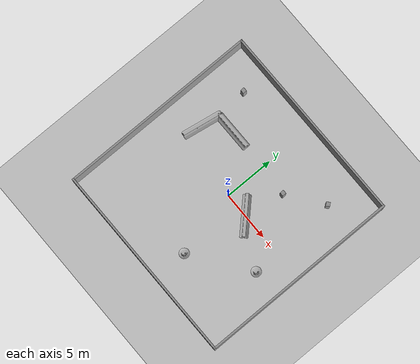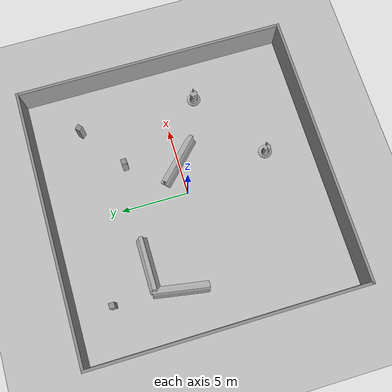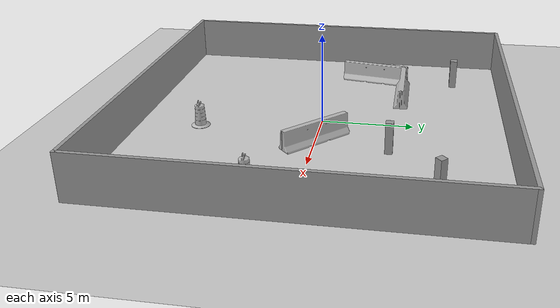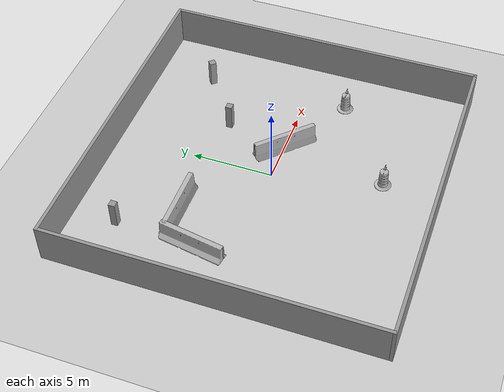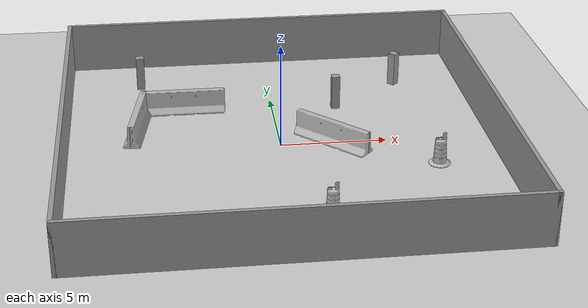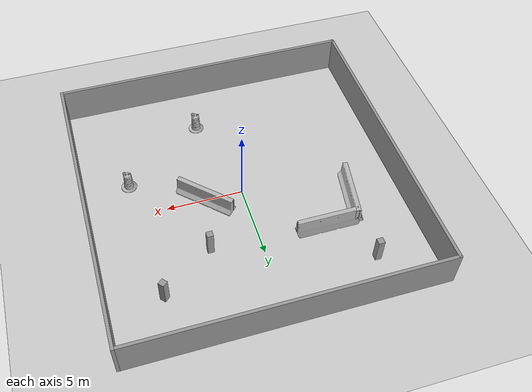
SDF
<sdf version="1.4">
 <world name="default">
  <light name="sun" type="directional">
   <pose>0 0 10 0 -0 0</pose>
   <diffuse>0.8 0.8 0.8 1</diffuse>
   <specular>0.2 0.2 0.2 1</specular>
   <attenuation>
    <range>1000</range>
    <constant>0.9</constant>
    <linear>0.01</linear>
    <quadratic>0.001</quadratic>
   </attenuation>
   <direction>-0.5 0.1 -0.9</direction>
  </light>
  <model name="BuildingDefaultName">
   <link name="Wall_25">
    <collision name="Wall_25_Collision">
     <geometry><box><size>20.2 0.2 2.5</size></box></geometry>
     <pose>0 0 1.25 0 -0 0</pose>
    </collision>
    <visual name="Wall_25_Visual">
     <pose>0 0 1.25 0 -0 0</pose>
     <geometry><box><size>20.2 0.2 2.5</size></box></geometry>
     <material>
      <script><uri>file://media/materials/scripts/gazebo.material</uri><name>Gazebo/Grey</name></script>
     </material>
    </visual>
    <velocity_decay><linear>0</linear><angular>0</angular></velocity_decay>
    <pose>-10 0 0 0 -0 1.5708</pose>
   </link>
   <link name="Wall_27">
    <collision name="Wall_27_Collision">
     <geometry><box><size>20.2 0.2 2.5</size></box></geometry>
     <pose>0 0 1.25 0 -0 0</pose>
    </collision>
    <visual name="Wall_27_Visual">
     <pose>0 0 1.25 0 -0 0</pose>
     <geometry><box><size>20.2 0.2 2.5</size></box></geometry>
     <material>
      <script><uri>file://media/materials/scripts/gazebo.material</uri><name>Gazebo/Grey</name></script>
     </material>
    </visual>
    <velocity_decay><linear>0</linear><angular>0</angular></velocity_decay>
    <pose>0 -10 0 0 -0 0</pose>
   </link>
   <link name="Wall_35">
    <collision name="Wall_35_Collision">
     <geometry><box><size>20.2 0.2 2.5</size></box></geometry>
     <pose>0 0 1.25 0 -0 0</pose>
    </collision>
    <visual name="Wall_35_Visual">
     <pose>0 0 1.25 0 -0 0</pose>
     <geometry><box><size>20.2 0.2 2.5</size></box></geometry>
     <material>
      <script><uri>file://media/materials/scripts/gazebo.material</uri><name>Gazebo/Grey</name></script>
     </material>
    </visual>
    <velocity_decay><linear>0</linear><angular>0</angular></velocity_decay>
    <pose>10 0 0 0 -0 1.5708</pose>
   </link>
   <link name="Wall_37">
    <collision name="Wall_37_Collision">
     <geometry><box><size>20.2 0.2 2.5</size></box></geometry>
     <pose>0 0 1.25 0 -0 0</pose>
    </collision>
    <visual name="Wall_37_Visual">
     <pose>0 0 1.25 0 -0 0</pose>
     <geometry><box><size>20.2 0.2 2.5</size></box></geometry>
     <material>
      <script><uri>file://media/materials/scripts/gazebo.material</uri><name>Gazebo/Grey</name></script>
     </material>
    </visual>
    <velocity_decay><linear>0</linear><angular>0</angular></velocity_decay>
    <pose>0 10 0 0 -0 3.14159</pose>
   </link>
   <static>1</static>
  </model>
  <model name="ground_plane">
   <static>1</static>
   <link name="link">
    <collision name="collision">
     <geometry><plane><normal>0 0 1</normal><size>100 100</size></plane></geometry>
     <surface><friction><ode><mu>100</mu><mu2>50</mu2></ode></friction></surface>
    </collision>
    <visual name="visual">
     <cast_shadows>0</cast_shadows>
     <geometry><plane><normal>0 0 1</normal><size>100 100</size></plane></geometry>
     <material>
      <script><uri>file://media/materials/scripts/gazebo.material</uri><name>Gazebo/Grey</name></script>
     </material>
    </visual>
    <velocity_decay><linear>0</linear><angular>0</angular></velocity_decay>
   </link>
  </model>
  <physics type="ode">
   <max_step_size>0.01</max_step_size>
   <real_time_factor>1</real_time_factor>
   <real_time_update_rate>100</real_time_update_rate>
   <gravity>0 0 -9.8</gravity>
  </physics>
  <scene><ambient>0.4 0.4 0.4 1</ambient><background>0.7 0.7 0.7 1</background><shadows>1</shadows></scene>
  <model name="jersey_barrier_15">
   <static>1</static>
   <link name="link">
    <visual name="visual">
     <geometry><mesh><uri>model://jersey_barrier/meshes/jersey_barrier.dae</uri></mesh></geometry>
    </visual>
    <collision name="upright">
     <pose>0 0 0.5715 0 -0 0</pose>
     <geometry><box><size>4.06542 0.3063 1.143</size></box></geometry>
    </collision>
    <collision name="base">
     <pose>0 0 0.032258 0 -0 0</pose>
     <geometry><box><size>4.06542 0.8107 0.064516</size></box></geometry>
    </collision>
    <collision name="base2">
     <pose>0 0 0.1 0 -0 0</pose>
     <geometry><box><size>4.06542 0.65 0.1</size></box></geometry>
    </collision>
    <collision name="base3">
     <pose>0 0 0.2 0 -0 0</pose>
     <geometry><box><size>4.06542 0.5 0.1</size></box></geometry>
    </collision>
    <collision name="left-angle">
     <pose>0 -0.224 0.2401 0.9 -0 0</pose>
     <geometry><box><size>4.06542 0.5 0.064516</size></box></geometry>
    </collision>
    <collision name="right-angle">
     <pose>0 0.224 0.2401 -0.9 0 0</pose>
     <geometry><box><size>4.06542 0.5 0.064516</size></box></geometry>
    </collision>
    <velocity_decay><linear>0</linear><angular>0</angular></velocity_decay>
   </link>
   <pose>2.45495 0 0 0 -0 2.36</pose>
  </model>
  <model name="Construction Barrel">
   <link name="link">
    <inertial>
     <pose>0 0 0.4 0 -0 0</pose>
     <mass>500</mass>
     <inertia><ixx>51.2096</ixx><iyy>51.2096</iyy><izz>25</izz><ixy>0</ixy><ixz>0</ixz><iyz>0</iyz></inertia>
    </inertial>
    <collision name="collision">
     <geometry><mesh><uri>model://construction_barrel/meshes/construction_barrel.dae</uri></mesh></geometry>
    </collision>
    <visual name="visual">
     <geometry><mesh><uri>model://construction_barrel/meshes/construction_barrel.dae</uri></mesh></geometry>
    </visual>
    <velocity_decay><linear>0</linear><angular>0</angular></velocity_decay>
   </link>
   <pose>7.00029 -2.54647 -0.00017 -6.9e-05 -0.000543 0.001252</pose>
   <static>0</static>
  </model>
  <model name="Construction Barrel_0">
   <link name="link">
    <inertial>
     <pose>0 0 0.4 0 -0 0</pose>
     <mass>500</mass>
     <inertia><ixx>51.2096</ixx><iyy>51.2096</iyy><izz>25</izz><ixy>0</ixy><ixz>0</ixz><iyz>0</iyz></inertia>
    </inertial>
    <collision name="collision">
     <geometry><mesh><uri>model://construction_barrel/meshes/construction_barrel.dae</uri></mesh></geometry>
    </collision>
    <visual name="visual">
     <geometry><mesh><uri>model://construction_barrel/meshes/construction_barrel.dae</uri></mesh></geometry>
    </visual>
    <velocity_decay><linear>0</linear><angular>0</angular></velocity_decay>
   </link>
   <pose>1.45201 -6.51134 -9.1e-05 0.00031 0.000179 0.000589</pose>
   <static>0</static>
  </model>
  <spherical_coordinates>
   <surface_model>EARTH_WGS84</surface_model>
   <latitude_deg>0</latitude_deg>
   <longitude_deg>0</longitude_deg>
   <elevation>0</elevation>
   <heading_deg>0</heading_deg>
  </spherical_coordinates>
  <model name="jersey_barrier">
   <static>1</static>
   <link name="link">
    <visual name="visual">
     <geometry><mesh><uri>model://jersey_barrier/meshes/jersey_barrier.dae</uri></mesh></geometry>
    </visual>
    <collision name="upright">
     <pose>0 0 0.5715 0 -0 0</pose>
     <geometry><box><size>4.06542 0.3063 1.143</size></box></geometry>
    </collision>
    <collision name="base">
     <pose>0 0 0.032258 0 -0 0</pose>
     <geometry><box><size>4.06542 0.8107 0.064516</size></box></geometry>
    </collision>
    <collision name="base2">
     <pose>0 0 0.1 0 -0 0</pose>
     <geometry><box><size>4.06542 0.65 0.1</size></box></geometry>
    </collision>
    <collision name="base3">
     <pose>0 0 0.2 0 -0 0</pose>
     <geometry><box><size>4.06542 0.5 0.1</size></box></geometry>
    </collision>
    <collision name="left-angle">
     <pose>0 -0.224 0.2401 0.9 -0 0</pose>
     <geometry><box><size>4.06542 0.5 0.064516</size></box></geometry>
    </collision>
    <collision name="right-angle">
     <pose>0 0.224 0.2401 -0.9 0 0</pose>
     <geometry><box><size>4.06542 0.5 0.064516</size></box></geometry>
    </collision>
    <velocity_decay><linear>0</linear><angular>0</angular></velocity_decay>
   </link>
   <pose>-4.36126 4.19996 0 0 -0 0</pose>
  </model>
  <model name="jersey_barrier_1">
   <static>1</static>
   <link name="link">
    <visual name="visual">
     <geometry><mesh><uri>model://jersey_barrier/meshes/jersey_barrier.dae</uri></mesh></geometry>
    </visual>
    <collision name="upright">
     <pose>0 0 0.5715 0 -0 0</pose>
     <geometry><box><size>4.06542 0.3063 1.143</size></box></geometry>
    </collision>
    <collision name="base">
     <pose>0 0 0.032258 0 -0 0</pose>
     <geometry><box><size>4.06542 0.8107 0.064516</size></box></geometry>
    </collision>
    <collision name="base2">
     <pose>0 0 0.1 0 -0 0</pose>
     <geometry><box><size>4.06542 0.65 0.1</size></box></geometry>
    </collision>
    <collision name="base3">
     <pose>0 0 0.2 0 -0 0</pose>
     <geometry><box><size>4.06542 0.5 0.1</size></box></geometry>
    </collision>
    <collision name="left-angle">
     <pose>0 -0.224 0.2401 0.9 -0 0</pose>
     <geometry><box><size>4.06542 0.5 0.064516</size></box></geometry>
    </collision>
    <collision name="right-angle">
     <pose>0 0.224 0.2401 -0.9 0 0</pose>
     <geometry><box><size>4.06542 0.5 0.064516</size></box></geometry>
    </collision>
    <velocity_decay><linear>0</linear><angular>0</angular></velocity_decay>
   </link>
   <pose>-6.62986 2.4256 0 0 0 -1.73607</pose>
  </model>
  <model name="unit_box_1">
   <pose>-6.42367 7.24186 0.85 0 0 -0.00024</pose>
   <link name="link">
    <inertial>
     <mass>1</mass>
     <inertia><ixx>1</ixx><ixy>0</ixy><ixz>0</ixz><iyy>1</iyy><iyz>0</iyz><izz>1</izz></inertia>
    </inertial>
    <collision name="collision"><geometry><box><size>0.4 0.4 1.7</size></box></geometry></collision>
    <visual name="visual">
     <geometry><box><size>0.4 0.4 1.7</size></box></geometry>
     <material>
      <script><uri>file://media/materials/scripts/gazebo.material</uri><name>Gazebo/Grey</name></script>
     </material>
    </visual>
    <velocity_decay><linear>0</linear><angular>0</angular></velocity_decay>
   </link>
   <static>0</static>
  </model>
  <model name="unit_box_2">
   <pose>3.16859 3.86901 0.849132 -6.7e-05 6.6e-05 -0.000479</pose>
   <link name="link">
    <inertial>
     <mass>1</mass>
     <inertia><ixx>1</ixx><ixy>0</ixy><ixz>0</ixz><iyy>1</iyy><iyz>0</iyz><izz>1</izz></inertia>
    </inertial>
    <collision name="collision"><geometry><box><size>0.4 0.4 1.7</size></box></geometry></collision>
    <visual name="visual">
     <geometry><box><size>0.4 0.4 1.7</size></box></geometry>
     <material>
      <script><uri>file://media/materials/scripts/gazebo.material</uri><name>Gazebo/Grey</name></script>
     </material>
    </visual>
    <velocity_decay><linear>0</linear><angular>0</angular></velocity_decay>
   </link>
   <static>0</static>
  </model>
  <model name="unit_box_3">
   <pose>6.58661 6.36394 0.85 -1e-06 1e-06 -0.838356</pose>
   <link name="link">
    <inertial>
     <mass>1</mass>
     <inertia><ixx>1</ixx><ixy>0</ixy><ixz>0</ixz><iyy>1</iyy><iyz>0</iyz><izz>1</izz></inertia>
    </inertial>
    <collision name="collision"><geometry><box><size>0.4 0.4 1.7</size></box></geometry></collision>
    <visual name="visual">
     <geometry><box><size>0.4 0.4 1.7</size></box></geometry>
     <material>
      <script><uri>file://media/materials/scripts/gazebo.material</uri><name>Gazebo/Grey</name></script>
     </material>
    </visual>
    <velocity_decay><linear>0</linear><angular>0</angular></velocity_decay>
   </link>
   <static>0</static>
  </model>
 </world>
</sdf>
